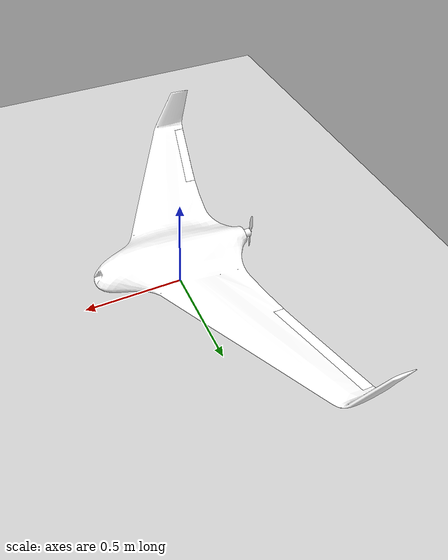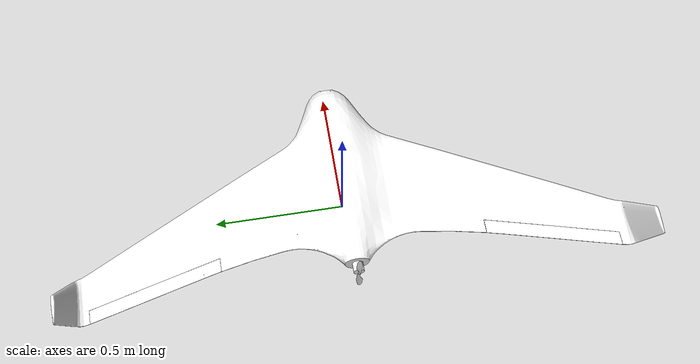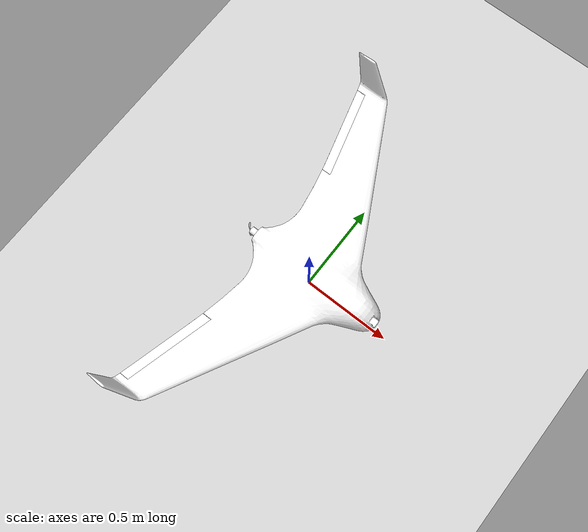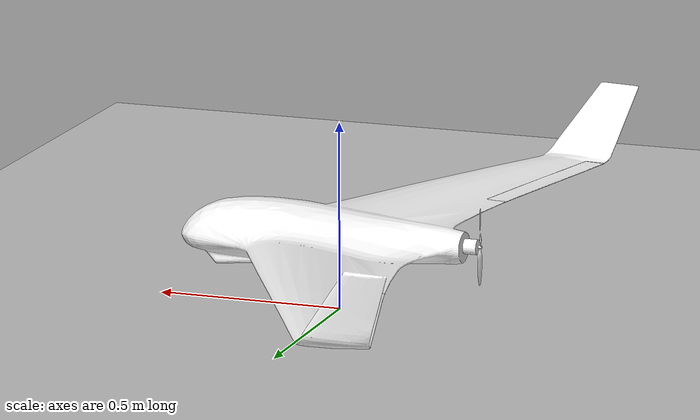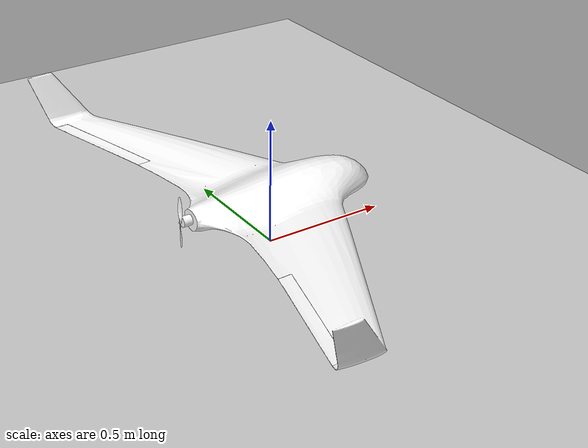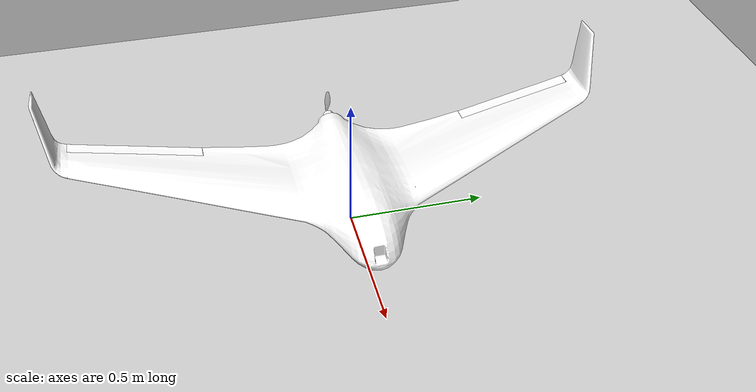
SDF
<?xml version="1.0" ?>
<sdf version="1.7">
  <world name="standard_vtol_arduplane_runway">
    <plugin filename="libignition-gazebo-physics-system.so"
      name="ignition::gazebo::systems::Physics">
    </plugin>
    <plugin filename="libignition-gazebo-user-commands-system.so"
      name="ignition::gazebo::systems::UserCommands">
    </plugin>
    <plugin filename="libignition-gazebo-scene-broadcaster-system.so"
      name="ignition::gazebo::systems::SceneBroadcaster">
    </plugin>
    <plugin filename="libignition-gazebo-imu-system.so"
      name="ignition::gazebo::systems::Imu">
    </plugin>

    <scene>
      <ambient>1.0 1.0 1.0</ambient>
      <background>0.8 0.8 0.8</background>
      <sky></sky>
    </scene>

    <light type="directional" name="sun">
      <cast_shadows>true</cast_shadows>
      <pose>0 0 10 0 0 0</pose>
      <diffuse>0.8 0.8 0.8 1</diffuse>
      <specular>0.8 0.8 0.8 1</specular>
      <attenuation>
        <range>1000</range>
        <constant>0.9</constant>
        <linear>0.01</linear>
        <quadratic>0.001</quadratic>
      </attenuation>
      <direction>-0.5 0.1 -0.9</direction>
    </light>

    <include>
      <uri>model://runway</uri>
    </include>

    <!-- SkyWalker X8 model -->
    <include>
      <pose>0 0 0.2 0 0 0</pose>
      <uri>model://skywalker_x8</uri>
    </include>

  </world>
</sdf>

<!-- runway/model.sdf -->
<sdf version="1.9">
  <model name="runway">
    <static>true</static>
    <link name="link">
      <collision name="collision">
        <geometry>
          <plane>
            <normal>0 0 1</normal>
          </plane>
        </geometry>
      </collision>
      <visual name="runway">
        <pose degrees="true">0 0 0 0 0 90</pose>
        <cast_shadows>false</cast_shadows>
        <geometry>
          <plane>
            <normal>0 0 1</normal>
            <size>1500 100</size>
          </plane>
        </geometry>
        <material>
          <ambient>0.8 0.8 0.8 1</ambient>
          <diffuse>0.8 0.8 0.8 1</diffuse>
          <specular>0.1 0.1 0.1 1</specular>
          <pbr>
            <metal>
              <albedo_map>materials/textures/runway.png</albedo_map>
              <roughness>0.6</roughness>
              <metalness>0</metalness>
            </metal>
          </pbr>
        </material>
      </visual>
      <visual name="airfield">
        <pose>0 0 -0.01 0 0 0</pose>
        <cast_shadows>false</cast_shadows>
        <geometry>
          <mesh>
            <uri>model://runway/meshes/airfield.dae</uri>
          </mesh>
        </geometry>
        <material>
          <ambient>0.8 0.8 0.8 1</ambient>
          <diffuse>0.8 0.8 0.8 1</diffuse>
          <specular>0.1 0.1 0.1 1</specular>
          <pbr>
            <metal>
              <albedo_map>materials/textures/Grass004_2K_Color.jpg</albedo_map>
              <ambient_occlusion_map>materials/textures/Grass004_2K_AmbientOcclusion.jpg</ambient_occlusion_map>
              <normal_map>materials/textures/Grass004_2K_NormalGL.jpg</normal_map>
              <roughness_map>materials/textures/Grass004_2K_Roughness.jpg</roughness_map>
              <roughness>0.6</roughness>
              <metalness>0</metalness>
            </metal>
          </pbr>
        </material>
      </visual>
    </link>
  </model>
</sdf>

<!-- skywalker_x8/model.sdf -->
<sdf version="1.7">
  <model name="skywalker_x8">
    <pose>0 0 0.246 0 0 0</pose>

    <link name='base_link'>
      <pose>0 0 0 0 0 0</pose>
      <inertial>
        <pose>0 0 0 0 0 0</pose>
        <mass>4.5</mass>
        <inertia>
          <ixx>0.45</ixx>
          <ixy>0</ixy>
          <ixz>0.06</ixz>
          <iyy>0.325</iyy>
          <iyz>0</iyz>
          <izz>0.75</izz>
        </inertia>
      </inertial>
      <collision name='base_link_collision'>
        <pose>0 0 -0.07 0 0 0</pose>
        <geometry>
          <box>
            <size>0.80 2.15 0.2</size>
          </box>
        </geometry>
      </collision>
      <visual name='base_link_visual'>
        <geometry>
          <mesh>
            <uri>model://skywalker_x8/meshes/x8_wing.dae</uri>
          </mesh>
        </geometry>
        <material>
          <diffuse>1.0 1.0 1.0</diffuse>
          <specular>1.0 1.0 1.0</specular>
          <pbr>
            <metal>
                <albedo_map>model://skywalker_x8/materials/textures/x8.tga</albedo_map>
                <metalness>0.1</metalness>
            </metal>
          </pbr>
        </material>
      </visual>
      <visual name='m4'>
        <pose>-0.361 0 0.0 0 1.57 0</pose>
        <geometry>
          <cylinder>
            <length>0.035</length>
            <radius>0.02</radius>
          </cylinder>
        </geometry>
        <material>
          <ambient>1 1 1</ambient>
          <diffuse>1 1 1</diffuse>
          <specular>1 1 1</specular>
          <pbr>
            <metal>
              <albedo_map>model://skywalker_x8/materials/textures/blue_metal/blue_metal_basecolor.jpg</albedo_map>
              <metalness_map>model://skywalker_x8/materials/textures/blue_metal/blue_metal_metallic.jpg</metalness_map>
              <normal_map>model://skywalker_x8/materials/textures/blue_metal/blue_metal_normal.jpg</normal_map>
              <roughness_map>model://skywalker_x8/materials/textures/blue_metal/blue_metal_roughness.jpg</roughness_map>
              <roughness>1.0</roughness>
              <metalness>1.0</metalness>
            </metal>
          </pbr>
        </material>
      </visual>
      <!-- save for debugging use -->
    </link>

    <link name='rotor_pusher'>
      <pose>-0.385 0 0.0 0 1.57 0</pose>
      <inertial>
        <mass>0.025</mass>
        <inertia>
          <ixx>9.75e-06</ixx>
          <ixy>0</ixy>
          <ixz>0</ixz>
          <iyy>0.000166704</iyy>
          <iyz>0</iyz>
          <izz>0.000167604</izz>
        </inertia>
      </inertial>
      <collision name='collision'>
        <pose>0.0 0 0 0 0 0</pose>
        <geometry>
          <cylinder>
            <length>0.005</length>
            <radius>0.065</radius>
          </cylinder>
        </geometry>
      </collision>
      <visual name='visual'>
        <pose>0 0 0 0 0 0</pose>
        <geometry>
          <mesh>
            <scale>0.8 0.8 0.8</scale>
            <uri>model://skywalker_x8/meshes/iris_prop_ccw.dae</uri>
          </mesh>
        </geometry>
        <material>
          <diffuse>1.0 1.0 1.0</diffuse>
          <specular>1.0 1.0 1.0</specular>
          <pbr>
            <metal>
                <albedo_map>model://skywalker_x8/materials/textures/x8.tga</albedo_map>
                <metalness>0.5</metalness>
            </metal>
          </pbr>
        </material>
      </visual>
    </link>
    <joint name='rotor_pusher_joint' type='revolute'>
      <child>rotor_pusher</child>
      <parent>base_link</parent>
      <axis>
        <xyz>0 0 1</xyz>
        <limit>
          <lower>-1e+16</lower>
          <upper>1e+16</upper>
        </limit>
        <dynamics>
          <damping>0.002</damping>
        </dynamics>
        <use_parent_model_frame>1</use_parent_model_frame>
      </axis>
    </joint>

    <link name="left_elevon">
      <inertial>
        <mass>0.1</mass>
        <inertia>
          <ixx>0.000102319</ixx>
          <ixy>0</ixy>
          <iyy>0.00334417</iyy>
          <ixz>0</ixz>
          <iyz>0</iyz>
          <izz>0.003446072</izz>
        </inertia>
        <pose>-0.30 0.75 -0.005 0 0 0</pose>
      </inertial>
      <visual name='left_elevon_visual'>
        <geometry>
          <mesh>
            <uri>model://skywalker_x8/meshes/x8_elevon_left.dae</uri>
          </mesh>
        </geometry>
        <material>
          <diffuse>1.0 1.0 1.0</diffuse>
          <specular>1.0 1.0 1.0</specular>
          <pbr>
            <metal>
                <albedo_map>model://skywalker_x8/materials/textures/x8.tga</albedo_map>
                <metalness>0.1</metalness>
            </metal>
          </pbr>
        </material>
      </visual>
    </link>

    <link name="right_elevon">
      <inertial>
        <mass>0.1</mass>
        <inertia>
          <ixx>0.000102319</ixx>
          <ixy>0</ixy>
          <iyy>0.00334417</iyy>
          <ixz>0</ixz>
          <iyz>0</iyz>
          <izz>0.003446072</izz>
        </inertia>
        <pose>-0.30 -0.75 -0.005 0 0 0</pose>
      </inertial>
      <visual name='right_elevon_visual'>
        <geometry>
          <mesh>
            <uri>model://skywalker_x8/meshes/x8_elevon_right.dae</uri>
          </mesh>
        </geometry>
        <material>
          <diffuse>1.0 1.0 1.0</diffuse>
          <specular>1.0 1.0 1.0</specular>
          <pbr>
            <metal>
                <albedo_map>model://skywalker_x8/materials/textures/x8.tga</albedo_map>
                <metalness>0.1</metalness>
            </metal>
          </pbr>
        </material>
      </visual>
    </link>

    <!-- Joint range -30/+30 deg. -->
    <joint name='left_elevon_joint' type='revolute'>
      <parent>base_link</parent>
      <child>left_elevon</child>
      <pose>-0.27 0.6 -0.005 0 0 0.265</pose>
      <axis>
        <xyz>0 1 0</xyz>
        <limit>
          <lower>-0.53</lower>
          <upper>0.53</upper>
        </limit>
        <dynamics>
          <damping>0.1</damping>
        </dynamics>
      </axis>
    </joint>

    <!-- Joint range -30/+30 deg. -->
    <joint name='right_elevon_joint' type='revolute'>
      <parent>base_link</parent>
      <child>right_elevon</child>
      <pose>-0.27 -0.6 -0.005 0 0 -0.265</pose>
      <axis>
        <xyz>0 1 0</xyz>
        <limit>
          <lower>-0.53</lower>
          <upper>0.53</upper>
        </limit>
        <dynamics>
          <damping>0.1</damping>
        </dynamics>
      </axis>
    </joint>

    <!-- sensors -->
    <link name='imu_link'>
      <inertial>
        <pose>0 0 0 0 0 0</pose>
        <mass>0.15</mass>
        <inertia>
          <ixx>0.00002</ixx>
          <ixy>0</ixy>
          <ixz>0</ixz>
          <iyy>0.00002</iyy>
          <iyz>0</iyz>
          <izz>0.00002</izz>
        </inertia>
      </inertial>
      <sensor name="imu_sensor" type="imu">
        <pose>0 0 0 3.141593 0 0</pose>
        <always_on>1</always_on>
        <update_rate>1000.0</update_rate>
      </sensor>
    </link>
    <joint name='skywalker_x8/imu_joint' type='revolute'>
      <child>imu_link</child>
      <parent>base_link</parent>
      <axis>
        <xyz>0 0 1</xyz>
        <limit>
          <lower>0</lower>
          <upper>0</upper>
          <effort>0</effort>
          <velocity>0</velocity>
        </limit>
        <dynamics>
          <damping>1.0</damping>
        </dynamics>
        <use_parent_model_frame>1</use_parent_model_frame>
      </axis>
    </joint>

    <!-- plugins -->
    <plugin filename="libignition-gazebo-joint-state-publisher-system.so"
      name="ignition::gazebo::systems::JointStatePublisher">
    </plugin>

    <!-- rotor_pusher lift-drag -->
    <plugin filename="libignition-gazebo-lift-drag-system.so"
        name="ignition::gazebo::systems::LiftDrag">
      <a0>0.30</a0>
      <alpha_stall>1.4</alpha_stall>
      <cla>4.2500</cla>
      <cda>0.10</cda>
      <cma>0.00</cma>
      <cla_stall>-0.025</cla_stall>
      <cda_stall>0.0</cda_stall>
      <cma_stall>0.0</cma_stall>
      <area>0.02</area>
      <air_density>1.2041</air_density>
      <cp>0.074205 0 0</cp>
      <forward>0 1 0</forward>
      <upward>0 0 1</upward>
      <link_name>rotor_pusher</link_name>
    </plugin>
    <plugin filename="libignition-gazebo-lift-drag-system.so"
        name="ignition::gazebo::systems::LiftDrag">
      <a0>0.30</a0>
      <alpha_stall>1.4</alpha_stall>
      <cla>4.2500</cla>
      <cda>0.10</cda>
      <cma>0.00</cma>
      <cla_stall>-0.025</cla_stall>
      <cda_stall>0.0</cda_stall>
      <cma_stall>0.0</cma_stall>
      <area>0.02</area>
      <air_density>1.2041</air_density>
      <cp>-0.074205 0 0</cp>
      <forward>0 -1 0</forward>
      <upward>0 0 1</upward>
      <link_name>rotor_pusher</link_name>
    </plugin>
    <!-- wing lift-drag -->
    <plugin filename="libignition-gazebo-lift-drag-system.so"
        name="ignition::gazebo::systems::LiftDrag">
      <a0>0.13</a0>
      <cla>3.7</cla>
      <cda>0.06417112299</cda>
      <cma>-1.8</cma>
      <alpha_stall>0.3391428111</alpha_stall>
      <cla_stall>-3.85</cla_stall>
      <cda_stall>-0.9233984055</cda_stall>
      <cma_stall>0</cma_stall>
      <cp>0.01 0 0</cp>
      <area>0.80</area>
      <air_density>1.2041</air_density>
      <forward>1 0 0</forward>
      <upward>0 0 1</upward>
      <link_name>base_link</link_name>
    </plugin>
    <!-- left_elevon lift-drag -->
    <plugin filename="libignition-gazebo-lift-drag-system.so"
        name="ignition::gazebo::systems::LiftDrag">
      <a0>0.15</a0>
      <cla>6.8</cla>
      <cda>0.06417112299</cda>
      <cma>-1.8</cma>
      <alpha_stall>0.6391428111</alpha_stall>
      <cla_stall>-3.85</cla_stall>
      <cda_stall>-0.9233984055</cda_stall>
      <cma_stall>0</cma_stall>
      <cp>-0.30 0.75 -0.005</cp>
      <area>0.10</area>
      <air_density>1.2041</air_density>
      <forward>1 0 0</forward>
      <upward>0 0 1</upward>
      <link_name>base_link</link_name>
      <control_joint_name>left_elevon_joint</control_joint_name>
      <control_joint_rad_to_cl>-5.0</control_joint_rad_to_cl>
    </plugin>
    <!-- right_elevon lift-drag -->
    <plugin filename="libignition-gazebo-lift-drag-system.so"
        name="ignition::gazebo::systems::LiftDrag">
      <a0>0.15</a0>
      <cla>6.8</cla>
      <cda>0.06417112299</cda>
      <cma>-1.8</cma>
      <alpha_stall>0.6391428111</alpha_stall>
      <cla_stall>-3.85</cla_stall>
      <cda_stall>-0.9233984055</cda_stall>
      <cma_stall>0</cma_stall>
      <cp>-0.30 -0.75 -0.005</cp>
      <area>0.10</area>
      <air_density>1.2041</air_density>
      <forward>1 0 0</forward>
      <upward>0 0 1</upward>
      <link_name>base_link</link_name>
      <control_joint_name>right_elevon_joint</control_joint_name>
      <control_joint_rad_to_cl>-5.0</control_joint_rad_to_cl>
    </plugin>
    <!-- left_winglet lift-drag -->
    <plugin filename="libignition-gazebo-lift-drag-system.so"
        name="ignition::gazebo::systems::LiftDrag">
      <a0>0.0</a0>
      <cla>4.752798721</cla>
      <cda>0.6417112299</cda>
      <cma>-1.8</cma>
      <alpha_stall>0.3391428111</alpha_stall>
      <cla_stall>-3.85</cla_stall>
      <cda_stall>-0.9233984055</cda_stall>
      <cma_stall>0</cma_stall>
      <cp>-0.36 1.04 0.08</cp>
      <area>0.12</area>
      <air_density>1.2041</air_density>
      <forward>1 0 0</forward>
      <upward>0 1 0</upward>
      <link_name>base_link</link_name>
    </plugin>
    <!-- right_winglet lift-drag -->
    <plugin filename="libignition-gazebo-lift-drag-system.so"
        name="ignition::gazebo::systems::LiftDrag">
      <a0>0.0</a0>
      <cla>4.752798721</cla>
      <cda>0.6417112299</cda>
      <cma>-1.8</cma>
      <alpha_stall>0.3391428111</alpha_stall>
      <cla_stall>-3.85</cla_stall>
      <cda_stall>-0.9233984055</cda_stall>
      <cma_stall>0</cma_stall>
      <cp>-0.36 -1.04 0.08</cp>
      <area>0.12</area>
      <air_density>1.2041</air_density>
      <forward>1 0 0</forward>
      <upward>0 -1 0</upward>
      <link_name>base_link</link_name>
    </plugin>

    <!-- original from standard_vtol -->
    <!-- left_wing_lift-drag -->
    <!-- right_wing_lift-drag -->

    <plugin filename="libignition-gazebo-apply-joint-force-system.so"
      name="ignition::gazebo::systems::ApplyJointForce">
      <joint_name>rotor_pusher_joint</joint_name>
    </plugin>
    <plugin filename="libignition-gazebo-apply-joint-force-system.so"
      name="ignition::gazebo::systems::ApplyJointForce">
      <joint_name>left_elevon_joint</joint_name>
    </plugin>
    <plugin filename="libignition-gazebo-apply-joint-force-system.so"
      name="ignition::gazebo::systems::ApplyJointForce">
      <joint_name>right_elevon_joint</joint_name>
    </plugin>

    <plugin name="ArduPilotPlugin" filename="libArduPilotPlugin.so">
      <!-- Port settings -->
      <fdm_addr>127.0.0.1</fdm_addr>
      <fdm_port_in>9002</fdm_port_in>
      <connectionTimeoutMaxCount>5</connectionTimeoutMaxCount>
      <lock_step>1</lock_step>

      <modelXYZToAirplaneXForwardZDown>0 0 0 3.141593 0 0</modelXYZToAirplaneXForwardZDown>
      <gazeboXYZToNED>0 0 0 3.141593 0 0</gazeboXYZToNED>

      <!-- Sensors -->
      <imuName>imu_sensor</imuName>

      <!--
          incoming control command [0, 1]
          so offset it by 0 to get [0, 1]
          and divide max target by 1.
          offset = 0
          multiplier = 838 max rpm / 1 = 838
        -->

      <!--
          SERVO3_FUNCTION   70 (Throttle)
          SERVO3_MAX        2000
          SERVO3_MIN        1000
          SERVO3_REVERSED   0
          SERVO3_TRIM       1000
       -->
      <control channel="2">
        <jointName>rotor_pusher_joint</jointName>
        <useForce>1</useForce>
        <multiplier>838</multiplier>
        <offset>0</offset>
        <servo_min>1000</servo_min>
        <servo_max>2000</servo_max>
        <type>VELOCITY</type>
        <p_gain>0.20</p_gain>
        <i_gain>0</i_gain>
        <d_gain>0</d_gain>
        <i_max>0</i_max>
        <i_min>0</i_min>
        <cmd_max>2.5</cmd_max>
        <cmd_min>-2.5</cmd_min>
      </control>

      <control channel="0">
        <jointName>left_elevon_joint</jointName>
        <useForce>1</useForce>
        <multiplier>1.048</multiplier>
        <offset>-0.5</offset>
        <servo_min>1100</servo_min>
        <servo_max>1900</servo_max>
        <type>POSITION</type>
        <p_gain>10.0</p_gain>
        <i_gain>0</i_gain>
        <d_gain>0</d_gain>
        <i_max>0</i_max>
        <i_min>0</i_min>
        <cmd_max>2.5</cmd_max>
        <cmd_min>-2.5</cmd_min>
      </control>

      <!--
          SERVO2_FUNCTION   78 (Elevon Right)
          SERVO2_MAX        1900
          SERVO2_MIN        1100
          SERVO2_REVERSED   0
          SERVO2_TRIM       1500
       -->
      <control channel="1">
        <jointName>right_elevon_joint</jointName>
        <useForce>1</useForce>
        <multiplier>1.048</multiplier>
        <offset>-0.5</offset>
        <servo_min>1100</servo_min>
        <servo_max>1900</servo_max>
        <type>POSITION</type>
        <p_gain>10.0</p_gain>
        <i_gain>0</i_gain>
        <d_gain>0</d_gain>
        <i_max>0</i_max>
        <i_min>0</i_min>
        <cmd_max>2.5</cmd_max>
        <cmd_min>-2.5</cmd_min>
      </control>

    </plugin>
  </model>
</sdf>
